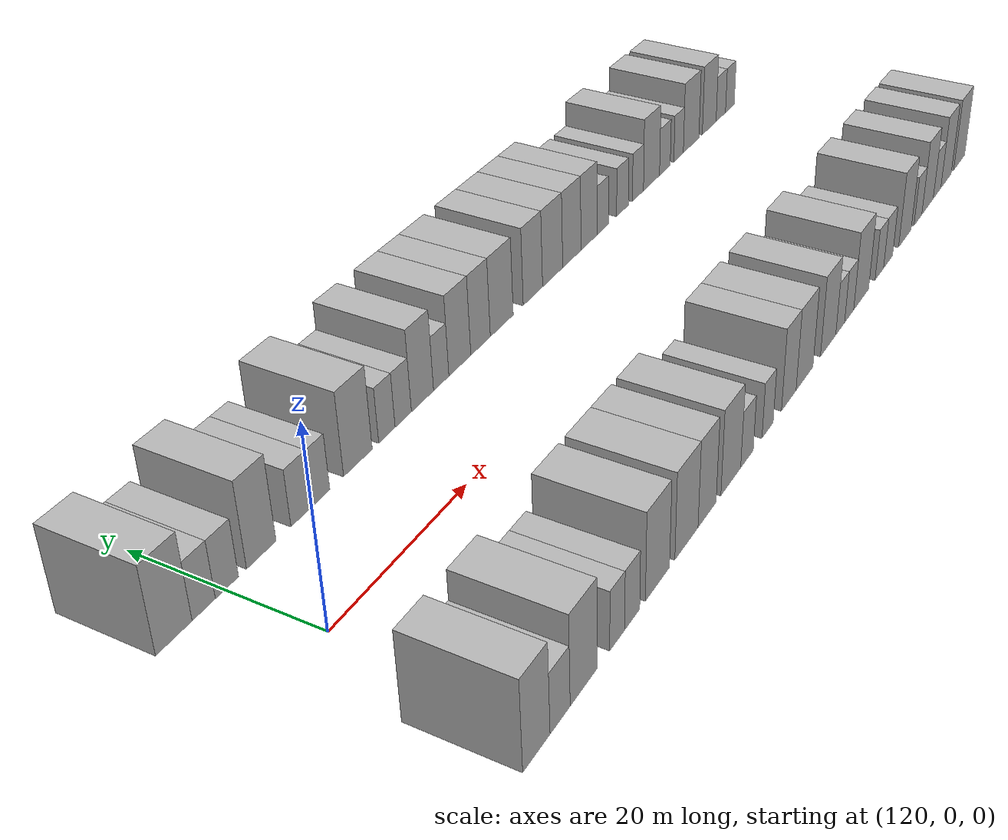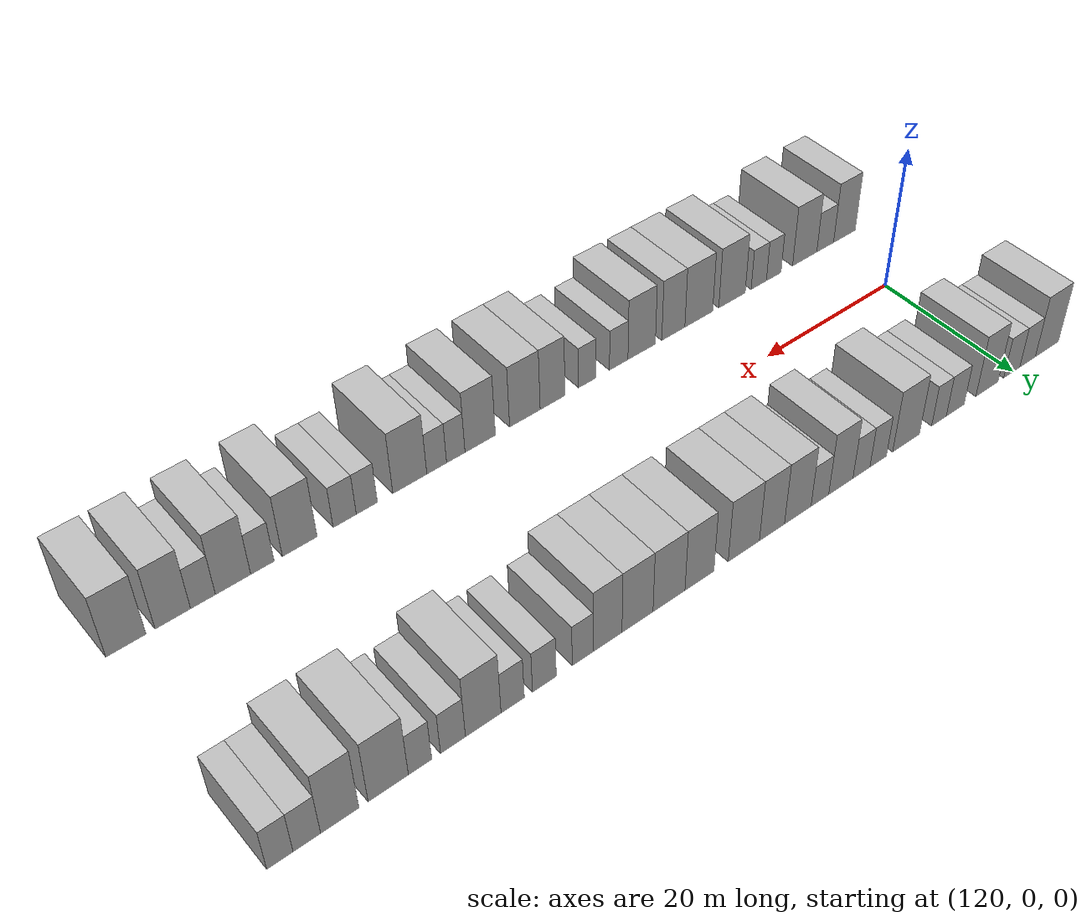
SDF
<sdf version="1.6">
 <world name="default">
  <model name="building_26">
   <static>1</static>
   <pose>114.0285 15.0000 0 0.000000 0.000000 1.570796</pose>
   <link name="link">
    <pose>0 0 4.50 0 0 0</pose>
    <collision name="collision"><geometry><box><size>10.0000 4.1726 9.0000</size></box></geometry></collision>
    <visual name="visual">
     <cast_shadows>0</cast_shadows>
     <geometry><box><size>10.0000 4.1726 9.0000</size></box></geometry>
     <material>
      <script>
       <uri>model://HANNAS_wall/materials/scripts</uri>
       <uri>model://HANNAS_wall/materials/textures</uri>
       <name>vrc/HANNAS_wall</name>
      </script>
     </material>
    </visual>
   </link>
  </model>
  <model name="building_27">
   <static>1</static>
   <pose>117.4972 15.0000 0 0.000000 0.000000 1.570796</pose>
   <link name="link">
    <pose>0 0 3.00 0 0 0</pose>
    <collision name="collision"><geometry><box><size>10.0000 2.7647 6.0000</size></box></geometry></collision>
    <visual name="visual">
     <cast_shadows>0</cast_shadows>
     <geometry><box><size>10.0000 2.7647 6.0000</size></box></geometry>
     <material>
      <script>
       <uri>model://HANNAS_wall/materials/scripts</uri>
       <uri>model://HANNAS_wall/materials/textures</uri>
       <name>vrc/HANNAS_wall</name>
      </script>
     </material>
    </visual>
   </link>
  </model>
  <model name="building_28">
   <static>1</static>
   <pose>120.3044 15.0000 0 0.000000 0.000000 1.570796</pose>
   <link name="link">
    <pose>0 0 3.00 0 0 0</pose>
    <collision name="collision"><geometry><box><size>10.0000 2.8498 6.0000</size></box></geometry></collision>
    <visual name="visual">
     <cast_shadows>0</cast_shadows>
     <geometry><box><size>10.0000 2.8498 6.0000</size></box></geometry>
     <material>
      <script>
       <uri>model://HANNAS_wall/materials/scripts</uri>
       <uri>model://HANNAS_wall/materials/textures</uri>
       <name>vrc/HANNAS_wall</name>
      </script>
     </material>
    </visual>
   </link>
  </model>
  <model name="building_29">
   <static>1</static>
   <pose>124.6412 15.0000 0 0.000000 0.000000 1.570796</pose>
   <link name="link">
    <pose>0 0 4.50 0 0 0</pose>
    <collision name="collision"><geometry><box><size>10.0000 3.8238 9.0000</size></box></geometry></collision>
    <visual name="visual">
     <cast_shadows>0</cast_shadows>
     <geometry><box><size>10.0000 3.8238 9.0000</size></box></geometry>
     <material>
      <script>
       <uri>model://HANNAS_wall/materials/scripts</uri>
       <uri>model://HANNAS_wall/materials/textures</uri>
       <name>vrc/HANNAS_wall</name>
      </script>
     </material>
    </visual>
   </link>
  </model>
  <model name="building_30">
   <static>1</static>
   <pose>130.0515 15.0000 0 0.000000 0.000000 1.570796</pose>
   <link name="link">
    <pose>0 0 3.00 0 0 0</pose>
    <collision name="collision"><geometry><box><size>10.0000 2.9967 6.0000</size></box></geometry></collision>
    <visual name="visual">
     <cast_shadows>0</cast_shadows>
     <geometry><box><size>10.0000 2.9967 6.0000</size></box></geometry>
     <material>
      <script>
       <uri>model://HANNAS_wall/materials/scripts</uri>
       <uri>model://HANNAS_wall/materials/textures</uri>
       <name>vrc/HANNAS_wall</name>
      </script>
     </material>
    </visual>
   </link>
  </model>
  <model name="building_31">
   <static>1</static>
   <pose>132.7683 15.0000 0 0.000000 0.000000 1.570796</pose>
   <link name="link">
    <pose>0 0 3.00 0 0 0</pose>
    <collision name="collision"><geometry><box><size>10.0000 2.4370 6.0000</size></box></geometry></collision>
    <visual name="visual">
     <cast_shadows>0</cast_shadows>
     <geometry><box><size>10.0000 2.4370 6.0000</size></box></geometry>
     <material>
      <script>
       <uri>model://HANNAS_wall/materials/scripts</uri>
       <uri>model://HANNAS_wall/materials/textures</uri>
       <name>vrc/HANNAS_wall</name>
      </script>
     </material>
    </visual>
   </link>
  </model>
  <model name="building_32">
   <static>1</static>
   <pose>138.1511 15.0000 0 0.000000 0.000000 1.570796</pose>
   <link name="link">
    <pose>0 0 4.50 0 0 0</pose>
    <collision name="collision"><geometry><box><size>10.0000 4.3286 9.0000</size></box></geometry></collision>
    <visual name="visual">
     <cast_shadows>0</cast_shadows>
     <geometry><box><size>10.0000 4.3286 9.0000</size></box></geometry>
     <material>
      <script>
       <uri>model://HANNAS_wall/materials/scripts</uri>
       <uri>model://HANNAS_wall/materials/textures</uri>
       <name>vrc/HANNAS_wall</name>
      </script>
     </material>
    </visual>
   </link>
  </model>
  <model name="building_33">
   <static>1</static>
   <pose>142.6161 15.0000 0 0.000000 0.000000 1.570796</pose>
   <link name="link">
    <pose>0 0 3.00 0 0 0</pose>
    <collision name="collision"><geometry><box><size>10.0000 2.6014 6.0000</size></box></geometry></collision>
    <visual name="visual">
     <cast_shadows>0</cast_shadows>
     <geometry><box><size>10.0000 2.6014 6.0000</size></box></geometry>
     <material>
      <script>
       <uri>model://HANNAS_wall/materials/scripts</uri>
       <uri>model://HANNAS_wall/materials/textures</uri>
       <name>vrc/HANNAS_wall</name>
      </script>
     </material>
    </visual>
   </link>
  </model>
  <model name="building_34">
   <static>1</static>
   <pose>145.2436 15.0000 0 0.000000 0.000000 1.570796</pose>
   <link name="link">
    <pose>0 0 3.00 0 0 0</pose>
    <collision name="collision"><geometry><box><size>10.0000 2.6535 6.0000</size></box></geometry></collision>
    <visual name="visual">
     <cast_shadows>0</cast_shadows>
     <geometry><box><size>10.0000 2.6535 6.0000</size></box></geometry>
     <material>
      <script>
       <uri>model://HANNAS_wall/materials/scripts</uri>
       <uri>model://HANNAS_wall/materials/textures</uri>
       <name>vrc/HANNAS_wall</name>
      </script>
     </material>
    </visual>
   </link>
  </model>
  <model name="building_35">
   <static>1</static>
   <pose>148.4332 15.0000 0 0.000000 0.000000 1.570796</pose>
   <link name="link">
    <pose>0 0 4.50 0 0 0</pose>
    <collision name="collision"><geometry><box><size>10.0000 3.7258 9.0000</size></box></geometry></collision>
    <visual name="visual">
     <cast_shadows>0</cast_shadows>
     <geometry><box><size>10.0000 3.7258 9.0000</size></box></geometry>
     <material>
      <script>
       <uri>model://HANNAS_wall/materials/scripts</uri>
       <uri>model://HANNAS_wall/materials/textures</uri>
       <name>vrc/HANNAS_wall</name>
      </script>
     </material>
    </visual>
   </link>
  </model>
  <model name="building_36">
   <static>1</static>
   <pose>151.6295 15.0000 0 0.000000 0.000000 1.570796</pose>
   <link name="link">
    <pose>0 0 3.00 0 0 0</pose>
    <collision name="collision"><geometry><box><size>10.0000 2.6668 6.0000</size></box></geometry></collision>
    <visual name="visual">
     <cast_shadows>0</cast_shadows>
     <geometry><box><size>10.0000 2.6668 6.0000</size></box></geometry>
     <material>
      <script>
       <uri>model://HANNAS_wall/materials/scripts</uri>
       <uri>model://HANNAS_wall/materials/textures</uri>
       <name>vrc/HANNAS_wall</name>
      </script>
     </material>
    </visual>
   </link>
  </model>
  <model name="building_37">
   <static>1</static>
   <pose>154.9333 15.0000 0 0.000000 0.000000 1.570796</pose>
   <link name="link">
    <pose>0 0 4.50 0 0 0</pose>
    <collision name="collision"><geometry><box><size>10.0000 3.9408 9.0000</size></box></geometry></collision>
    <visual name="visual">
     <cast_shadows>0</cast_shadows>
     <geometry><box><size>10.0000 3.9408 9.0000</size></box></geometry>
     <material>
      <script>
       <uri>model://HANNAS_wall/materials/scripts</uri>
       <uri>model://HANNAS_wall/materials/textures</uri>
       <name>vrc/HANNAS_wall</name>
      </script>
     </material>
    </visual>
   </link>
  </model>
  <model name="building_38">
   <static>1</static>
   <pose>158.7264 15.0000 0 0.000000 0.000000 1.570796</pose>
   <link name="link">
    <pose>0 0 4.50 0 0 0</pose>
    <collision name="collision"><geometry><box><size>10.0000 3.6454 9.0000</size></box></geometry></collision>
    <visual name="visual">
     <cast_shadows>0</cast_shadows>
     <geometry><box><size>10.0000 3.6454 9.0000</size></box></geometry>
     <material>
      <script>
       <uri>model://HANNAS_wall/materials/scripts</uri>
       <uri>model://HANNAS_wall/materials/textures</uri>
       <name>vrc/HANNAS_wall</name>
      </script>
     </material>
    </visual>
   </link>
  </model>
  <model name="building_39">
   <static>1</static>
   <pose>162.7712 15.0000 0 0.000000 0.000000 1.570796</pose>
   <link name="link">
    <pose>0 0 4.50 0 0 0</pose>
    <collision name="collision"><geometry><box><size>10.0000 4.4442 9.0000</size></box></geometry></collision>
    <visual name="visual">
     <cast_shadows>0</cast_shadows>
     <geometry><box><size>10.0000 4.4442 9.0000</size></box></geometry>
     <material>
      <script>
       <uri>model://HANNAS_wall/materials/scripts</uri>
       <uri>model://HANNAS_wall/materials/textures</uri>
       <name>vrc/HANNAS_wall</name>
      </script>
     </material>
    </visual>
   </link>
  </model>
  <model name="building_40">
   <static>1</static>
   <pose>168.9857 15.0000 0 0.000000 0.000000 1.570796</pose>
   <link name="link">
    <pose>0 0 4.50 0 0 0</pose>
    <collision name="collision"><geometry><box><size>10.0000 3.9849 9.0000</size></box></geometry></collision>
    <visual name="visual">
     <cast_shadows>0</cast_shadows>
     <geometry><box><size>10.0000 3.9849 9.0000</size></box></geometry>
     <material>
      <script>
       <uri>model://HANNAS_wall/materials/scripts</uri>
       <uri>model://HANNAS_wall/materials/textures</uri>
       <name>vrc/HANNAS_wall</name>
      </script>
     </material>
    </visual>
   </link>
  </model>
  <model name="building_41">
   <static>1</static>
   <pose>173.1314 15.0000 0 0.000000 0.000000 1.570796</pose>
   <link name="link">
    <pose>0 0 4.50 0 0 0</pose>
    <collision name="collision"><geometry><box><size>10.0000 4.3065 9.0000</size></box></geometry></collision>
    <visual name="visual">
     <cast_shadows>0</cast_shadows>
     <geometry><box><size>10.0000 4.3065 9.0000</size></box></geometry>
     <material>
      <script>
       <uri>model://HANNAS_wall/materials/scripts</uri>
       <uri>model://HANNAS_wall/materials/textures</uri>
       <name>vrc/HANNAS_wall</name>
      </script>
     </material>
    </visual>
   </link>
  </model>
  <model name="building_42">
   <static>1</static>
   <pose>177.3272 15.0000 0 0.000000 0.000000 1.570796</pose>
   <link name="link">
    <pose>0 0 4.50 0 0 0</pose>
    <collision name="collision"><geometry><box><size>10.0000 4.0850 9.0000</size></box></geometry></collision>
    <visual name="visual">
     <cast_shadows>0</cast_shadows>
     <geometry><box><size>10.0000 4.0850 9.0000</size></box></geometry>
     <material>
      <script>
       <uri>model://HANNAS_wall/materials/scripts</uri>
       <uri>model://HANNAS_wall/materials/textures</uri>
       <name>vrc/HANNAS_wall</name>
      </script>
     </material>
    </visual>
   </link>
  </model>
  <model name="building_43">
   <static>1</static>
   <pose>181.2210 15.0000 0 0.000000 0.000000 1.570796</pose>
   <link name="link">
    <pose>0 0 4.50 0 0 0</pose>
    <collision name="collision"><geometry><box><size>10.0000 3.7026 9.0000</size></box></geometry></collision>
    <visual name="visual">
     <cast_shadows>0</cast_shadows>
     <geometry><box><size>10.0000 3.7026 9.0000</size></box></geometry>
     <material>
      <script>
       <uri>model://HANNAS_wall/materials/scripts</uri>
       <uri>model://HANNAS_wall/materials/textures</uri>
       <name>vrc/HANNAS_wall</name>
      </script>
     </material>
    </visual>
   </link>
  </model>
  <model name="building_44">
   <static>1</static>
   <pose>184.3974 15.0000 0 0.000000 0.000000 1.570796</pose>
   <link name="link">
    <pose>0 0 3.00 0 0 0</pose>
    <collision name="collision"><geometry><box><size>10.0000 2.6503 6.0000</size></box></geometry></collision>
    <visual name="visual">
     <cast_shadows>0</cast_shadows>
     <geometry><box><size>10.0000 2.6503 6.0000</size></box></geometry>
     <material>
      <script>
       <uri>model://HANNAS_wall/materials/scripts</uri>
       <uri>model://HANNAS_wall/materials/textures</uri>
       <name>vrc/HANNAS_wall</name>
      </script>
     </material>
    </visual>
   </link>
  </model>
  <model name="building_45">
   <static>1</static>
   <pose>189.1841 15.0000 0 0.000000 0.000000 1.570796</pose>
   <link name="link">
    <pose>0 0 3.00 0 0 0</pose>
    <collision name="collision"><geometry><box><size>10.0000 2.9231 6.0000</size></box></geometry></collision>
    <visual name="visual">
     <cast_shadows>0</cast_shadows>
     <geometry><box><size>10.0000 2.9231 6.0000</size></box></geometry>
     <material>
      <script>
       <uri>model://HANNAS_wall/materials/scripts</uri>
       <uri>model://HANNAS_wall/materials/textures</uri>
       <name>vrc/HANNAS_wall</name>
      </script>
     </material>
    </visual>
   </link>
  </model>
  <model name="building_46">
   <static>1</static>
   <pose>193.0448 15.0000 0 0.000000 0.000000 1.570796</pose>
   <link name="link">
    <pose>0 0 3.00 0 0 0</pose>
    <collision name="collision"><geometry><box><size>10.0000 2.7984 6.0000</size></box></geometry></collision>
    <visual name="visual">
     <cast_shadows>0</cast_shadows>
     <geometry><box><size>10.0000 2.7984 6.0000</size></box></geometry>
     <material>
      <script>
       <uri>model://HANNAS_wall/materials/scripts</uri>
       <uri>model://HANNAS_wall/materials/textures</uri>
       <name>vrc/HANNAS_wall</name>
      </script>
     </material>
    </visual>
   </link>
  </model>
  <model name="building_47">
   <static>1</static>
   <pose>196.5476 15.0000 0 0.000000 0.000000 1.570796</pose>
   <link name="link">
    <pose>0 0 4.50 0 0 0</pose>
    <collision name="collision"><geometry><box><size>10.0000 4.2070 9.0000</size></box></geometry></collision>
    <visual name="visual">
     <cast_shadows>0</cast_shadows>
     <geometry><box><size>10.0000 4.2070 9.0000</size></box></geometry>
     <material>
      <script>
       <uri>model://HANNAS_wall/materials/scripts</uri>
       <uri>model://HANNAS_wall/materials/textures</uri>
       <name>vrc/HANNAS_wall</name>
      </script>
     </material>
    </visual>
   </link>
  </model>
  <model name="building_48">
   <static>1</static>
   <pose>200.0917 15.0000 0 0.000000 0.000000 1.570796</pose>
   <link name="link">
    <pose>0 0 3.00 0 0 0</pose>
    <collision name="collision"><geometry><box><size>10.0000 2.8813 6.0000</size></box></geometry></collision>
    <visual name="visual">
     <cast_shadows>0</cast_shadows>
     <geometry><box><size>10.0000 2.8813 6.0000</size></box></geometry>
     <material>
      <script>
       <uri>model://HANNAS_wall/materials/scripts</uri>
       <uri>model://HANNAS_wall/materials/textures</uri>
       <name>vrc/HANNAS_wall</name>
      </script>
     </material>
    </visual>
   </link>
  </model>
  <model name="building_49">
   <static>1</static>
   <pose>203.8550 15.0000 0 0.000000 0.000000 1.570796</pose>
   <link name="link">
    <pose>0 0 3.00 0 0 0</pose>
    <collision name="collision"><geometry><box><size>10.0000 2.6454 6.0000</size></box></geometry></collision>
    <visual name="visual">
     <cast_shadows>0</cast_shadows>
     <geometry><box><size>10.0000 2.6454 6.0000</size></box></geometry>
     <material>
      <script>
       <uri>model://HANNAS_wall/materials/scripts</uri>
       <uri>model://HANNAS_wall/materials/textures</uri>
       <name>vrc/HANNAS_wall</name>
      </script>
     </material>
    </visual>
   </link>
  </model>
  <model name="building_50">
   <static>1</static>
   <pose>207.4082 15.0000 0 0.000000 0.000000 1.570796</pose>
   <link name="link">
    <pose>0 0 4.50 0 0 0</pose>
    <collision name="collision"><geometry><box><size>10.0000 4.4609 9.0000</size></box></geometry></collision>
    <visual name="visual">
     <cast_shadows>0</cast_shadows>
     <geometry><box><size>10.0000 4.4609 9.0000</size></box></geometry>
     <material>
      <script>
       <uri>model://HANNAS_wall/materials/scripts</uri>
       <uri>model://HANNAS_wall/materials/textures</uri>
       <name>vrc/HANNAS_wall</name>
      </script>
     </material>
    </visual>
   </link>
  </model>
  <model name="building_51">
   <static>1</static>
   <pose>212.6906 15.0000 0 0.000000 0.000000 1.570796</pose>
   <link name="link">
    <pose>0 0 4.50 0 0 0</pose>
    <collision name="collision"><geometry><box><size>10.0000 4.1039 9.0000</size></box></geometry></collision>
    <visual name="visual">
     <cast_shadows>0</cast_shadows>
     <geometry><box><size>10.0000 4.1039 9.0000</size></box></geometry>
     <material>
      <script>
       <uri>model://HANNAS_wall/materials/scripts</uri>
       <uri>model://HANNAS_wall/materials/textures</uri>
       <name>vrc/HANNAS_wall</name>
      </script>
     </material>
    </visual>
   </link>
  </model>
  <model name="building_52">
   <static>1</static>
   <pose>216.1874 15.0000 0 0.000000 0.000000 1.570796</pose>
   <link name="link">
    <pose>0 0 3.00 0 0 0</pose>
    <collision name="collision"><geometry><box><size>10.0000 2.8897 6.0000</size></box></geometry></collision>
    <visual name="visual">
     <cast_shadows>0</cast_shadows>
     <geometry><box><size>10.0000 2.8897 6.0000</size></box></geometry>
     <material>
      <script>
       <uri>model://HANNAS_wall/materials/scripts</uri>
       <uri>model://HANNAS_wall/materials/textures</uri>
       <name>vrc/HANNAS_wall</name>
      </script>
     </material>
    </visual>
   </link>
  </model>
  <model name="building_53">
   <static>1</static>
   <pose>218.9940 15.0000 0 0.000000 0.000000 1.570796</pose>
   <link name="link">
    <pose>0 0 3.00 0 0 0</pose>
    <collision name="collision"><geometry><box><size>10.0000 2.7235 6.0000</size></box></geometry></collision>
    <visual name="visual">
     <cast_shadows>0</cast_shadows>
     <geometry><box><size>10.0000 2.7235 6.0000</size></box></geometry>
     <material>
      <script>
       <uri>model://HANNAS_wall/materials/scripts</uri>
       <uri>model://HANNAS_wall/materials/textures</uri>
       <name>vrc/HANNAS_wall</name>
      </script>
     </material>
    </visual>
   </link>
  </model>
  <model name="building_81">
   <static>1</static>
   <pose>116.9890 -15.0000 0 0.000000 0.000000 1.570796</pose>
   <link name="link">
    <pose>0 0 4.50 0 0 0</pose>
    <collision name="collision"><geometry><box><size>10.0000 3.8737 9.0000</size></box></geometry></collision>
    <visual name="visual">
     <cast_shadows>0</cast_shadows>
     <geometry><box><size>10.0000 3.8737 9.0000</size></box></geometry>
     <material>
      <script>
       <uri>model://HANNAS_wall/materials/scripts</uri>
       <uri>model://HANNAS_wall/materials/textures</uri>
       <name>vrc/HANNAS_wall</name>
      </script>
     </material>
    </visual>
   </link>
  </model>
  <model name="building_82">
   <static>1</static>
   <pose>120.4163 -15.0000 0 0.000000 0.000000 1.570796</pose>
   <link name="link">
    <pose>0 0 3.00 0 0 0</pose>
    <collision name="collision"><geometry><box><size>10.0000 2.9810 6.0000</size></box></geometry></collision>
    <visual name="visual">
     <cast_shadows>0</cast_shadows>
     <geometry><box><size>10.0000 2.9810 6.0000</size></box></geometry>
     <material>
      <script>
       <uri>model://HANNAS_wall/materials/scripts</uri>
       <uri>model://HANNAS_wall/materials/textures</uri>
       <name>vrc/HANNAS_wall</name>
      </script>
     </material>
    </visual>
   </link>
  </model>
  <model name="building_83">
   <static>1</static>
   <pose>124.0224 -15.0000 0 0.000000 0.000000 1.570796</pose>
   <link name="link">
    <pose>0 0 4.50 0 0 0</pose>
    <collision name="collision"><geometry><box><size>10.0000 4.2311 9.0000</size></box></geometry></collision>
    <visual name="visual">
     <cast_shadows>0</cast_shadows>
     <geometry><box><size>10.0000 4.2311 9.0000</size></box></geometry>
     <material>
      <script>
       <uri>model://HANNAS_wall/materials/scripts</uri>
       <uri>model://HANNAS_wall/materials/textures</uri>
       <name>vrc/HANNAS_wall</name>
      </script>
     </material>
    </visual>
   </link>
  </model>
  <model name="building_84">
   <static>1</static>
   <pose>129.3806 -15.0000 0 0.000000 0.000000 1.570796</pose>
   <link name="link">
    <pose>0 0 3.00 0 0 0</pose>
    <collision name="collision"><geometry><box><size>10.0000 2.4853 6.0000</size></box></geometry></collision>
    <visual name="visual">
     <cast_shadows>0</cast_shadows>
     <geometry><box><size>10.0000 2.4853 6.0000</size></box></geometry>
     <material>
      <script>
       <uri>model://HANNAS_wall/materials/scripts</uri>
       <uri>model://HANNAS_wall/materials/textures</uri>
       <name>vrc/HANNAS_wall</name>
      </script>
     </material>
    </visual>
   </link>
  </model>
  <model name="building_85">
   <static>1</static>
   <pose>131.9070 -15.0000 0 0.000000 0.000000 1.570796</pose>
   <link name="link">
    <pose>0 0 3.00 0 0 0</pose>
    <collision name="collision"><geometry><box><size>10.0000 2.5676 6.0000</size></box></geometry></collision>
    <visual name="visual">
     <cast_shadows>0</cast_shadows>
     <geometry><box><size>10.0000 2.5676 6.0000</size></box></geometry>
     <material>
      <script>
       <uri>model://HANNAS_wall/materials/scripts</uri>
       <uri>model://HANNAS_wall/materials/textures</uri>
       <name>vrc/HANNAS_wall</name>
      </script>
     </material>
    </visual>
   </link>
  </model>
  <model name="building_86">
   <static>1</static>
   <pose>136.3742 -15.0000 0 0.000000 0.000000 1.570796</pose>
   <link name="link">
    <pose>0 0 4.50 0 0 0</pose>
    <collision name="collision"><geometry><box><size>10.0000 4.3668 9.0000</size></box></geometry></collision>
    <visual name="visual">
     <cast_shadows>0</cast_shadows>
     <geometry><box><size>10.0000 4.3668 9.0000</size></box></geometry>
     <material>
      <script>
       <uri>model://HANNAS_wall/materials/scripts</uri>
       <uri>model://HANNAS_wall/materials/textures</uri>
       <name>vrc/HANNAS_wall</name>
      </script>
     </material>
    </visual>
   </link>
  </model>
  <model name="building_87">
   <static>1</static>
   <pose>141.7983 -15.0000 0 0.000000 0.000000 1.570796</pose>
   <link name="link">
    <pose>0 0 4.50 0 0 0</pose>
    <collision name="collision"><geometry><box><size>10.0000 4.4815 9.0000</size></box></geometry></collision>
    <visual name="visual">
     <cast_shadows>0</cast_shadows>
     <geometry><box><size>10.0000 4.4815 9.0000</size></box></geometry>
     <material>
      <script>
       <uri>model://HANNAS_wall/materials/scripts</uri>
       <uri>model://HANNAS_wall/materials/textures</uri>
       <name>vrc/HANNAS_wall</name>
      </script>
     </material>
    </visual>
   </link>
  </model>
  <model name="building_88">
   <static>1</static>
   <pose>145.8669 -15.0000 0 0.000000 0.000000 1.570796</pose>
   <link name="link">
    <pose>0 0 4.50 0 0 0</pose>
    <collision name="collision"><geometry><box><size>10.0000 3.6556 9.0000</size></box></geometry></collision>
    <visual name="visual">
     <cast_shadows>0</cast_shadows>
     <geometry><box><size>10.0000 3.6556 9.0000</size></box></geometry>
     <material>
      <script>
       <uri>model://HANNAS_wall/materials/scripts</uri>
       <uri>model://HANNAS_wall/materials/textures</uri>
       <name>vrc/HANNAS_wall</name>
      </script>
     </material>
    </visual>
   </link>
  </model>
  <model name="building_89">
   <static>1</static>
   <pose>150.8135 -15.0000 0 0.000000 0.000000 1.570796</pose>
   <link name="link">
    <pose>0 0 4.50 0 0 0</pose>
    <collision name="collision"><geometry><box><size>10.0000 4.2376 9.0000</size></box></geometry></collision>
    <visual name="visual">
     <cast_shadows>0</cast_shadows>
     <geometry><box><size>10.0000 4.2376 9.0000</size></box></geometry>
     <material>
      <script>
       <uri>model://HANNAS_wall/materials/scripts</uri>
       <uri>model://HANNAS_wall/materials/textures</uri>
       <name>vrc/HANNAS_wall</name>
      </script>
     </material>
    </visual>
   </link>
  </model>
  <model name="building_90">
   <static>1</static>
   <pose>154.3322 -15.0000 0 0.000000 0.000000 1.570796</pose>
   <link name="link">
    <pose>0 0 3.00 0 0 0</pose>
    <collision name="collision"><geometry><box><size>10.0000 2.7999 6.0000</size></box></geometry></collision>
    <visual name="visual">
     <cast_shadows>0</cast_shadows>
     <geometry><box><size>10.0000 2.7999 6.0000</size></box></geometry>
     <material>
      <script>
       <uri>model://HANNAS_wall/materials/scripts</uri>
       <uri>model://HANNAS_wall/materials/textures</uri>
       <name>vrc/HANNAS_wall</name>
      </script>
     </material>
    </visual>
   </link>
  </model>
  <model name="building_91">
   <static>1</static>
   <pose>159.0381 -15.0000 0 0.000000 0.000000 1.570796</pose>
   <link name="link">
    <pose>0 0 3.00 0 0 0</pose>
    <collision name="collision"><geometry><box><size>10.0000 2.6119 6.0000</size></box></geometry></collision>
    <visual name="visual">
     <cast_shadows>0</cast_shadows>
     <geometry><box><size>10.0000 2.6119 6.0000</size></box></geometry>
     <material>
      <script>
       <uri>model://HANNAS_wall/materials/scripts</uri>
       <uri>model://HANNAS_wall/materials/textures</uri>
       <name>vrc/HANNAS_wall</name>
      </script>
     </material>
    </visual>
   </link>
  </model>
  <model name="building_92">
   <static>1</static>
   <pose>164.1454 -15.0000 0 0.000000 0.000000 1.570796</pose>
   <link name="link">
    <pose>0 0 4.50 0 0 0</pose>
    <collision name="collision"><geometry><box><size>10.0000 3.6027 9.0000</size></box></geometry></collision>
    <visual name="visual">
     <cast_shadows>0</cast_shadows>
     <geometry><box><size>10.0000 3.6027 9.0000</size></box></geometry>
     <material>
      <script>
       <uri>model://HANNAS_wall/materials/scripts</uri>
       <uri>model://HANNAS_wall/materials/textures</uri>
       <name>vrc/HANNAS_wall</name>
      </script>
     </material>
    </visual>
   </link>
  </model>
  <model name="building_93">
   <static>1</static>
   <pose>168.1191 -15.0000 0 0.000000 0.000000 1.570796</pose>
   <link name="link">
    <pose>0 0 4.50 0 0 0</pose>
    <collision name="collision"><geometry><box><size>10.0000 4.3447 9.0000</size></box></geometry></collision>
    <visual name="visual">
     <cast_shadows>0</cast_shadows>
     <geometry><box><size>10.0000 4.3447 9.0000</size></box></geometry>
     <material>
      <script>
       <uri>model://HANNAS_wall/materials/scripts</uri>
       <uri>model://HANNAS_wall/materials/textures</uri>
       <name>vrc/HANNAS_wall</name>
      </script>
     </material>
    </visual>
   </link>
  </model>
  <model name="building_94">
   <static>1</static>
   <pose>174.3853 -15.0000 0 0.000000 0.000000 1.570796</pose>
   <link name="link">
    <pose>0 0 4.50 0 0 0</pose>
    <collision name="collision"><geometry><box><size>10.0000 4.1878 9.0000</size></box></geometry></collision>
    <visual name="visual">
     <cast_shadows>0</cast_shadows>
     <geometry><box><size>10.0000 4.1878 9.0000</size></box></geometry>
     <material>
      <script>
       <uri>model://HANNAS_wall/materials/scripts</uri>
       <uri>model://HANNAS_wall/materials/textures</uri>
       <name>vrc/HANNAS_wall</name>
      </script>
     </material>
    </visual>
   </link>
  </model>
  <model name="building_95">
   <static>1</static>
   <pose>177.7281 -15.0000 0 0.000000 0.000000 1.570796</pose>
   <link name="link">
    <pose>0 0 3.00 0 0 0</pose>
    <collision name="collision"><geometry><box><size>10.0000 2.4977 6.0000</size></box></geometry></collision>
    <visual name="visual">
     <cast_shadows>0</cast_shadows>
     <geometry><box><size>10.0000 2.4977 6.0000</size></box></geometry>
     <material>
      <script>
       <uri>model://HANNAS_wall/materials/scripts</uri>
       <uri>model://HANNAS_wall/materials/textures</uri>
       <name>vrc/HANNAS_wall</name>
      </script>
     </material>
    </visual>
   </link>
  </model>
  <model name="building_96">
   <static>1</static>
   <pose>180.2967 -15.0000 0 0.000000 0.000000 1.570796</pose>
   <link name="link">
    <pose>0 0 3.00 0 0 0</pose>
    <collision name="collision"><geometry><box><size>10.0000 2.6396 6.0000</size></box></geometry></collision>
    <visual name="visual">
     <cast_shadows>0</cast_shadows>
     <geometry><box><size>10.0000 2.6396 6.0000</size></box></geometry>
     <material>
      <script>
       <uri>model://HANNAS_wall/materials/scripts</uri>
       <uri>model://HANNAS_wall/materials/textures</uri>
       <name>vrc/HANNAS_wall</name>
      </script>
     </material>
    </visual>
   </link>
  </model>
  <model name="building_97">
   <static>1</static>
   <pose>183.8547 -15.0000 0 0.000000 0.000000 1.570796</pose>
   <link name="link">
    <pose>0 0 4.50 0 0 0</pose>
    <collision name="collision"><geometry><box><size>10.0000 4.4766 9.0000</size></box></geometry></collision>
    <visual name="visual">
     <cast_shadows>0</cast_shadows>
     <geometry><box><size>10.0000 4.4766 9.0000</size></box></geometry>
     <material>
      <script>
       <uri>model://HANNAS_wall/materials/scripts</uri>
       <uri>model://HANNAS_wall/materials/textures</uri>
       <name>vrc/HANNAS_wall</name>
      </script>
     </material>
    </visual>
   </link>
  </model>
  <model name="building_98">
   <static>1</static>
   <pose>189.4374 -15.0000 0 0.000000 0.000000 1.570796</pose>
   <link name="link">
    <pose>0 0 3.00 0 0 0</pose>
    <collision name="collision"><geometry><box><size>10.0000 2.6888 6.0000</size></box></geometry></collision>
    <visual name="visual">
     <cast_shadows>0</cast_shadows>
     <geometry><box><size>10.0000 2.6888 6.0000</size></box></geometry>
     <material>
      <script>
       <uri>model://HANNAS_wall/materials/scripts</uri>
       <uri>model://HANNAS_wall/materials/textures</uri>
       <name>vrc/HANNAS_wall</name>
      </script>
     </material>
    </visual>
   </link>
  </model>
  <model name="building_99">
   <static>1</static>
   <pose>192.2387 -15.0000 0 0.000000 0.000000 1.570796</pose>
   <link name="link">
    <pose>0 0 3.00 0 0 0</pose>
    <collision name="collision"><geometry><box><size>10.0000 2.9137 6.0000</size></box></geometry></collision>
    <visual name="visual">
     <cast_shadows>0</cast_shadows>
     <geometry><box><size>10.0000 2.9137 6.0000</size></box></geometry>
     <material>
      <script>
       <uri>model://HANNAS_wall/materials/scripts</uri>
       <uri>model://HANNAS_wall/materials/textures</uri>
       <name>vrc/HANNAS_wall</name>
      </script>
     </material>
    </visual>
   </link>
  </model>
  <model name="building_100">
   <static>1</static>
   <pose>197.8176 -15.0000 0 0.000000 0.000000 1.570796</pose>
   <link name="link">
    <pose>0 0 4.50 0 0 0</pose>
    <collision name="collision"><geometry><box><size>10.0000 4.2441 9.0000</size></box></geometry></collision>
    <visual name="visual">
     <cast_shadows>0</cast_shadows>
     <geometry><box><size>10.0000 4.2441 9.0000</size></box></geometry>
     <material>
      <script>
       <uri>model://HANNAS_wall/materials/scripts</uri>
       <uri>model://HANNAS_wall/materials/textures</uri>
       <name>vrc/HANNAS_wall</name>
      </script>
     </material>
    </visual>
   </link>
  </model>
  <model name="building_101">
   <static>1</static>
   <pose>202.3352 -15.0000 0 0.000000 0.000000 1.570796</pose>
   <link name="link">
    <pose>0 0 3.00 0 0 0</pose>
    <collision name="collision"><geometry><box><size>10.0000 2.7909 6.0000</size></box></geometry></collision>
    <visual name="visual">
     <cast_shadows>0</cast_shadows>
     <geometry><box><size>10.0000 2.7909 6.0000</size></box></geometry>
     <material>
      <script>
       <uri>model://HANNAS_wall/materials/scripts</uri>
       <uri>model://HANNAS_wall/materials/textures</uri>
       <name>vrc/HANNAS_wall</name>
      </script>
     </material>
    </visual>
   </link>
  </model>
  <model name="building_102">
   <static>1</static>
   <pose>205.8008 -15.0000 0 0.000000 0.000000 1.570796</pose>
   <link name="link">
    <pose>0 0 4.50 0 0 0</pose>
    <collision name="collision"><geometry><box><size>10.0000 4.1403 9.0000</size></box></geometry></collision>
    <visual name="visual">
     <cast_shadows>0</cast_shadows>
     <geometry><box><size>10.0000 4.1403 9.0000</size></box></geometry>
     <material>
      <script>
       <uri>model://HANNAS_wall/materials/scripts</uri>
       <uri>model://HANNAS_wall/materials/textures</uri>
       <name>vrc/HANNAS_wall</name>
      </script>
     </material>
    </visual>
   </link>
  </model>
  <model name="building_103">
   <static>1</static>
   <pose>209.2978 -15.0000 0 0.000000 0.000000 1.570796</pose>
   <link name="link">
    <pose>0 0 3.00 0 0 0</pose>
    <collision name="collision"><geometry><box><size>10.0000 2.8538 6.0000</size></box></geometry></collision>
    <visual name="visual">
     <cast_shadows>0</cast_shadows>
     <geometry><box><size>10.0000 2.8538 6.0000</size></box></geometry>
     <material>
      <script>
       <uri>model://HANNAS_wall/materials/scripts</uri>
       <uri>model://HANNAS_wall/materials/textures</uri>
       <name>vrc/HANNAS_wall</name>
      </script>
     </material>
    </visual>
   </link>
  </model>
  <model name="building_104">
   <static>1</static>
   <pose>212.7335 -15.0000 0 0.000000 0.000000 1.570796</pose>
   <link name="link">
    <pose>0 0 4.50 0 0 0</pose>
    <collision name="collision"><geometry><box><size>10.0000 4.0177 9.0000</size></box></geometry></collision>
    <visual name="visual">
     <cast_shadows>0</cast_shadows>
     <geometry><box><size>10.0000 4.0177 9.0000</size></box></geometry>
     <material>
      <script>
       <uri>model://HANNAS_wall/materials/scripts</uri>
       <uri>model://HANNAS_wall/materials/textures</uri>
       <name>vrc/HANNAS_wall</name>
      </script>
     </material>
    </visual>
   </link>
  </model>
  <model name="building_105">
   <static>1</static>
   <pose>217.9502 -15.0000 0 0.000000 0.000000 1.570796</pose>
   <link name="link">
    <pose>0 0 4.50 0 0 0</pose>
    <collision name="collision"><geometry><box><size>10.0000 4.4157 9.0000</size></box></geometry></collision>
    <visual name="visual">
     <cast_shadows>0</cast_shadows>
     <geometry><box><size>10.0000 4.4157 9.0000</size></box></geometry>
     <material>
      <script>
       <uri>model://HANNAS_wall/materials/scripts</uri>
       <uri>model://HANNAS_wall/materials/textures</uri>
       <name>vrc/HANNAS_wall</name>
      </script>
     </material>
    </visual>
   </link>
  </model>
 </world>
</sdf>
